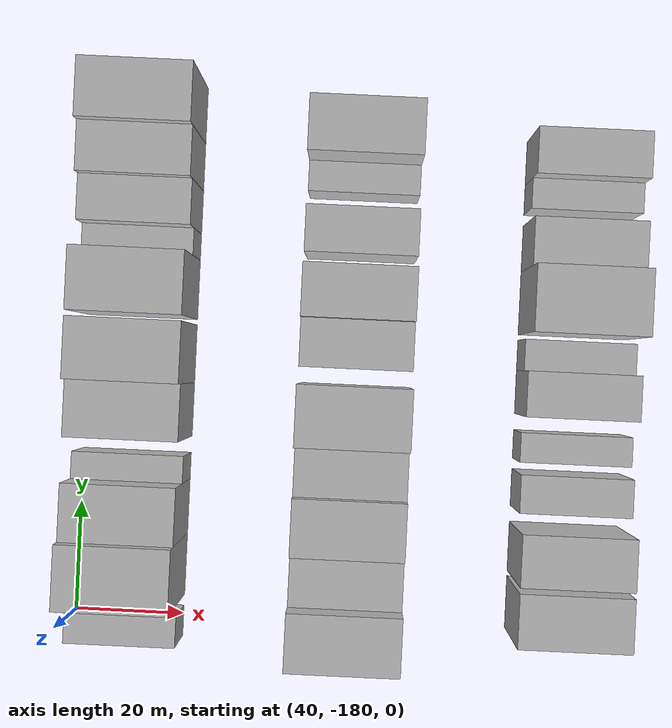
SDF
<sdf version="1.6">
 <world name="default">
  <model name="building_23">
   <static>1</static>
   <pose>50.0000 -181.3504 0 0.000000 0.000000 0.000000</pose>
   <link name="link">
    <pose>0 0 6.00 0 0 0</pose>
    <collision name="collision"><geometry><box><size>20.0000 5.7038 12.0000</size></box></geometry></collision>
    <visual name="visual">
     <cast_shadows>0</cast_shadows>
     <geometry><box><size>20.0000 5.7038 12.0000</size></box></geometry>
     <material>
      <script>
       <uri>model://HANNAS_wall/materials/scripts</uri>
       <uri>model://HANNAS_wall/materials/textures</uri>
       <name>vrc/HANNAS_wall</name>
      </script>
     </material>
    </visual>
   </link>
  </model>
  <model name="building_24">
   <static>1</static>
   <pose>50.0000 -170.7666 0 0.000000 0.000000 0.000000</pose>
   <link name="link">
    <pose>0 0 12.00 0 0 0</pose>
    <collision name="collision"><geometry><box><size>20.0000 11.4638 24.0000</size></box></geometry></collision>
    <visual name="visual">
     <cast_shadows>0</cast_shadows>
     <geometry><box><size>20.0000 11.4638 24.0000</size></box></geometry>
     <material>
      <script>
       <uri>model://HANNAS_wall/materials/scripts</uri>
       <uri>model://HANNAS_wall/materials/textures</uri>
       <name>vrc/HANNAS_wall</name>
      </script>
     </material>
    </visual>
   </link>
  </model>
  <model name="building_25">
   <static>1</static>
   <pose>50.0000 -159.9259 0 0.000000 0.000000 0.000000</pose>
   <link name="link">
    <pose>0 0 10.50 0 0 0</pose>
    <collision name="collision"><geometry><box><size>20.0000 10.2175 21.0000</size></box></geometry></collision>
    <visual name="visual">
     <cast_shadows>0</cast_shadows>
     <geometry><box><size>20.0000 10.2175 21.0000</size></box></geometry>
     <material>
      <script>
       <uri>model://HANNAS_wall/materials/scripts</uri>
       <uri>model://HANNAS_wall/materials/textures</uri>
       <name>vrc/HANNAS_wall</name>
      </script>
     </material>
    </visual>
   </link>
  </model>
  <model name="building_26">
   <static>1</static>
   <pose>50.0000 -152.3563 0 0.000000 0.000000 0.000000</pose>
   <link name="link">
    <pose>0 0 6.00 0 0 0</pose>
    <collision name="collision"><geometry><box><size>20.0000 4.9218 12.0000</size></box></geometry></collision>
    <visual name="visual">
     <cast_shadows>0</cast_shadows>
     <geometry><box><size>20.0000 4.9218 12.0000</size></box></geometry>
     <material>
      <script>
       <uri>model://HANNAS_wall/materials/scripts</uri>
       <uri>model://HANNAS_wall/materials/textures</uri>
       <name>vrc/HANNAS_wall</name>
      </script>
     </material>
    </visual>
   </link>
  </model>
  <model name="building_27">
   <static>1</static>
   <pose>50.0000 -141.8743 0 0.000000 0.000000 0.000000</pose>
   <link name="link">
    <pose>0 0 10.50 0 0 0</pose>
    <collision name="collision"><geometry><box><size>20.0000 10.0421 21.0000</size></box></geometry></collision>
    <visual name="visual">
     <cast_shadows>0</cast_shadows>
     <geometry><box><size>20.0000 10.0421 21.0000</size></box></geometry>
     <material>
      <script>
       <uri>model://HANNAS_wall/materials/scripts</uri>
       <uri>model://HANNAS_wall/materials/textures</uri>
       <name>vrc/HANNAS_wall</name>
      </script>
     </material>
    </visual>
   </link>
  </model>
  <model name="building_28">
   <static>1</static>
   <pose>50.0000 -131.4665 0 0.000000 0.000000 0.000000</pose>
   <link name="link">
    <pose>0 0 12.00 0 0 0</pose>
    <collision name="collision"><geometry><box><size>20.0000 10.7736 24.0000</size></box></geometry></collision>
    <visual name="visual">
     <cast_shadows>0</cast_shadows>
     <geometry><box><size>20.0000 10.7736 24.0000</size></box></geometry>
     <material>
      <script>
       <uri>model://HANNAS_wall/materials/scripts</uri>
       <uri>model://HANNAS_wall/materials/textures</uri>
       <name>vrc/HANNAS_wall</name>
      </script>
     </material>
    </visual>
   </link>
  </model>
  <model name="building_29">
   <static>1</static>
   <pose>50.0000 -119.5319 0 0.000000 0.000000 0.000000</pose>
   <link name="link">
    <pose>0 0 12.00 0 0 0</pose>
    <collision name="collision"><geometry><box><size>20.0000 11.0957 24.0000</size></box></geometry></collision>
    <visual name="visual">
     <cast_shadows>0</cast_shadows>
     <geometry><box><size>20.0000 11.0957 24.0000</size></box></geometry>
     <material>
      <script>
       <uri>model://HANNAS_wall/materials/scripts</uri>
       <uri>model://HANNAS_wall/materials/textures</uri>
       <name>vrc/HANNAS_wall</name>
      </script>
     </material>
    </visual>
   </link>
  </model>
  <model name="building_30">
   <static>1</static>
   <pose>50.0000 -111.5464 0 0.000000 0.000000 0.000000</pose>
   <link name="link">
    <pose>0 0 6.00 0 0 0</pose>
    <collision name="collision"><geometry><box><size>20.0000 4.8752 12.0000</size></box></geometry></collision>
    <visual name="visual">
     <cast_shadows>0</cast_shadows>
     <geometry><box><size>20.0000 4.8752 12.0000</size></box></geometry>
     <material>
      <script>
       <uri>model://HANNAS_wall/materials/scripts</uri>
       <uri>model://HANNAS_wall/materials/textures</uri>
       <name>vrc/HANNAS_wall</name>
      </script>
     </material>
    </visual>
   </link>
  </model>
  <model name="building_31">
   <static>1</static>
   <pose>50.0000 -105.0671 0 0.000000 0.000000 0.000000</pose>
   <link name="link">
    <pose>0 0 9.00 0 0 0</pose>
    <collision name="collision"><geometry><box><size>20.0000 8.0835 18.0000</size></box></geometry></collision>
    <visual name="visual">
     <cast_shadows>0</cast_shadows>
     <geometry><box><size>20.0000 8.0835 18.0000</size></box></geometry>
     <material>
      <script>
       <uri>model://HANNAS_wall/materials/scripts</uri>
       <uri>model://HANNAS_wall/materials/textures</uri>
       <name>vrc/HANNAS_wall</name>
      </script>
     </material>
    </visual>
   </link>
  </model>
  <model name="building_32">
   <static>1</static>
   <pose>50.0000 -96.6124 0 0.000000 0.000000 0.000000</pose>
   <link name="link">
    <pose>0 0 10.50 0 0 0</pose>
    <collision name="collision"><geometry><box><size>20.0000 8.8259 21.0000</size></box></geometry></collision>
    <visual name="visual">
     <cast_shadows>0</cast_shadows>
     <geometry><box><size>20.0000 8.8259 21.0000</size></box></geometry>
     <material>
      <script>
       <uri>model://HANNAS_wall/materials/scripts</uri>
       <uri>model://HANNAS_wall/materials/textures</uri>
       <name>vrc/HANNAS_wall</name>
      </script>
     </material>
    </visual>
   </link>
  </model>
  <model name="building_33">
   <static>1</static>
   <pose>50.0000 -87.0101 0 0.000000 0.000000 0.000000</pose>
   <link name="link">
    <pose>0 0 12.00 0 0 0</pose>
    <collision name="collision"><geometry><box><size>20.0000 10.3787 24.0000</size></box></geometry></collision>
    <visual name="visual">
     <cast_shadows>0</cast_shadows>
     <geometry><box><size>20.0000 10.3787 24.0000</size></box></geometry>
     <material>
      <script>
       <uri>model://HANNAS_wall/materials/scripts</uri>
       <uri>model://HANNAS_wall/materials/textures</uri>
       <name>vrc/HANNAS_wall</name>
      </script>
     </material>
    </visual>
   </link>
  </model>
  <model name="building_105">
   <static>1</static>
   <pose>90.0000 -179.9731 0 0.000000 0.000000 0.000000</pose>
   <link name="link">
    <pose>0 0 12.00 0 0 0</pose>
    <collision name="collision"><geometry><box><size>20.0000 10.2423 24.0000</size></box></geometry></collision>
    <visual name="visual">
     <cast_shadows>0</cast_shadows>
     <geometry><box><size>20.0000 10.2423 24.0000</size></box></geometry>
     <material>
      <script>
       <uri>model://HANNAS_wall/materials/scripts</uri>
       <uri>model://HANNAS_wall/materials/textures</uri>
       <name>vrc/HANNAS_wall</name>
      </script>
     </material>
    </visual>
   </link>
  </model>
  <model name="building_106">
   <static>1</static>
   <pose>90.0000 -170.3654 0 0.000000 0.000000 0.000000</pose>
   <link name="link">
    <pose>0 0 9.00 0 0 0</pose>
    <collision name="collision"><geometry><box><size>20.0000 8.9731 18.0000</size></box></geometry></collision>
    <visual name="visual">
     <cast_shadows>0</cast_shadows>
     <geometry><box><size>20.0000 8.9731 18.0000</size></box></geometry>
     <material>
      <script>
       <uri>model://HANNAS_wall/materials/scripts</uri>
       <uri>model://HANNAS_wall/materials/textures</uri>
       <name>vrc/HANNAS_wall</name>
      </script>
     </material>
    </visual>
   </link>
  </model>
  <model name="building_107">
   <static>1</static>
   <pose>90.0000 -160.7550 0 0.000000 0.000000 0.000000</pose>
   <link name="link">
    <pose>0 0 10.50 0 0 0</pose>
    <collision name="collision"><geometry><box><size>20.0000 10.2478 21.0000</size></box></geometry></collision>
    <visual name="visual">
     <cast_shadows>0</cast_shadows>
     <geometry><box><size>20.0000 10.2478 21.0000</size></box></geometry>
     <material>
      <script>
       <uri>model://HANNAS_wall/materials/scripts</uri>
       <uri>model://HANNAS_wall/materials/textures</uri>
       <name>vrc/HANNAS_wall</name>
      </script>
     </material>
    </visual>
   </link>
  </model>
  <model name="building_108">
   <static>1</static>
   <pose>90.0000 -151.1889 0 0.000000 0.000000 0.000000</pose>
   <link name="link">
    <pose>0 0 9.00 0 0 0</pose>
    <collision name="collision"><geometry><box><size>20.0000 8.8845 18.0000</size></box></geometry></collision>
    <visual name="visual">
     <cast_shadows>0</cast_shadows>
     <geometry><box><size>20.0000 8.8845 18.0000</size></box></geometry>
     <material>
      <script>
       <uri>model://HANNAS_wall/materials/scripts</uri>
       <uri>model://HANNAS_wall/materials/textures</uri>
       <name>vrc/HANNAS_wall</name>
      </script>
     </material>
    </visual>
   </link>
  </model>
  <model name="building_109">
   <static>1</static>
   <pose>90.0000 -141.3131 0 0.000000 0.000000 0.000000</pose>
   <link name="link">
    <pose>0 0 12.00 0 0 0</pose>
    <collision name="collision"><geometry><box><size>20.0000 10.8669 24.0000</size></box></geometry></collision>
    <visual name="visual">
     <cast_shadows>0</cast_shadows>
     <geometry><box><size>20.0000 10.8669 24.0000</size></box></geometry>
     <material>
      <script>
       <uri>model://HANNAS_wall/materials/scripts</uri>
       <uri>model://HANNAS_wall/materials/textures</uri>
       <name>vrc/HANNAS_wall</name>
      </script>
     </material>
    </visual>
   </link>
  </model>
  <model name="building_110">
   <static>1</static>
   <pose>90.0000 -128.5545 0 0.000000 0.000000 0.000000</pose>
   <link name="link">
    <pose>0 0 9.00 0 0 0</pose>
    <collision name="collision"><geometry><box><size>20.0000 8.6504 18.0000</size></box></geometry></collision>
    <visual name="visual">
     <cast_shadows>0</cast_shadows>
     <geometry><box><size>20.0000 8.6504 18.0000</size></box></geometry>
     <material>
      <script>
       <uri>model://HANNAS_wall/materials/scripts</uri>
       <uri>model://HANNAS_wall/materials/textures</uri>
       <name>vrc/HANNAS_wall</name>
      </script>
     </material>
    </visual>
   </link>
  </model>
  <model name="building_111">
   <static>1</static>
   <pose>90.0000 -119.4966 0 0.000000 0.000000 0.000000</pose>
   <link name="link">
    <pose>0 0 10.50 0 0 0</pose>
    <collision name="collision"><geometry><box><size>20.0000 9.4654 21.0000</size></box></geometry></collision>
    <visual name="visual">
     <cast_shadows>0</cast_shadows>
     <geometry><box><size>20.0000 9.4654 21.0000</size></box></geometry>
     <material>
      <script>
       <uri>model://HANNAS_wall/materials/scripts</uri>
       <uri>model://HANNAS_wall/materials/textures</uri>
       <name>vrc/HANNAS_wall</name>
      </script>
     </material>
    </visual>
   </link>
  </model>
  <model name="building_112">
   <static>1</static>
   <pose>90.0000 -108.6212 0 0.000000 0.000000 0.000000</pose>
   <link name="link">
    <pose>0 0 9.00 0 0 0</pose>
    <collision name="collision"><geometry><box><size>20.0000 8.2855 18.0000</size></box></geometry></collision>
    <visual name="visual">
     <cast_shadows>0</cast_shadows>
     <geometry><box><size>20.0000 8.2855 18.0000</size></box></geometry>
     <material>
      <script>
       <uri>model://HANNAS_wall/materials/scripts</uri>
       <uri>model://HANNAS_wall/materials/textures</uri>
       <name>vrc/HANNAS_wall</name>
      </script>
     </material>
    </visual>
   </link>
  </model>
  <model name="building_113">
   <static>1</static>
   <pose>90.0000 -98.7568 0 0.000000 0.000000 0.000000</pose>
   <link name="link">
    <pose>0 0 6.00 0 0 0</pose>
    <collision name="collision"><geometry><box><size>20.0000 5.4432 12.0000</size></box></geometry></collision>
    <visual name="visual">
     <cast_shadows>0</cast_shadows>
     <geometry><box><size>20.0000 5.4432 12.0000</size></box></geometry>
     <material>
      <script>
       <uri>model://HANNAS_wall/materials/scripts</uri>
       <uri>model://HANNAS_wall/materials/textures</uri>
       <name>vrc/HANNAS_wall</name>
      </script>
     </material>
    </visual>
   </link>
  </model>
  <model name="building_114">
   <static>1</static>
   <pose>90.0000 -91.2025 0 0.000000 0.000000 0.000000</pose>
   <link name="link">
    <pose>0 0 12.00 0 0 0</pose>
    <collision name="collision"><geometry><box><size>20.0000 9.6654 24.0000</size></box></geometry></collision>
    <visual name="visual">
     <cast_shadows>0</cast_shadows>
     <geometry><box><size>20.0000 9.6654 24.0000</size></box></geometry>
     <material>
      <script>
       <uri>model://HANNAS_wall/materials/scripts</uri>
       <uri>model://HANNAS_wall/materials/textures</uri>
       <name>vrc/HANNAS_wall</name>
      </script>
     </material>
    </visual>
   </link>
  </model>
  <model name="building_189">
   <static>1</static>
   <pose>130.0000 -174.9758 0 0.000000 0.000000 0.000000</pose>
   <link name="link">
    <pose>0 0 10.50 0 0 0</pose>
    <collision name="collision"><geometry><box><size>20.0000 9.5912 21.0000</size></box></geometry></collision>
    <visual name="visual">
     <cast_shadows>0</cast_shadows>
     <geometry><box><size>20.0000 9.5912 21.0000</size></box></geometry>
     <material>
      <script>
       <uri>model://HANNAS_wall/materials/scripts</uri>
       <uri>model://HANNAS_wall/materials/textures</uri>
       <name>vrc/HANNAS_wall</name>
      </script>
     </material>
    </visual>
   </link>
  </model>
  <model name="building_190">
   <static>1</static>
   <pose>130.0000 -164.5649 0 0.000000 0.000000 0.000000</pose>
   <link name="link">
    <pose>0 0 10.50 0 0 0</pose>
    <collision name="collision"><geometry><box><size>20.0000 9.2305 21.0000</size></box></geometry></collision>
    <visual name="visual">
     <cast_shadows>0</cast_shadows>
     <geometry><box><size>20.0000 9.2305 21.0000</size></box></geometry>
     <material>
      <script>
       <uri>model://HANNAS_wall/materials/scripts</uri>
       <uri>model://HANNAS_wall/materials/textures</uri>
       <name>vrc/HANNAS_wall</name>
      </script>
     </material>
    </visual>
   </link>
  </model>
  <model name="building_191">
   <static>1</static>
   <pose>130.0000 -153.5371 0 0.000000 0.000000 0.000000</pose>
   <link name="link">
    <pose>0 0 7.50 0 0 0</pose>
    <collision name="collision"><geometry><box><size>20.0000 6.8252 15.0000</size></box></geometry></collision>
    <visual name="visual">
     <cast_shadows>0</cast_shadows>
     <geometry><box><size>20.0000 6.8252 15.0000</size></box></geometry>
     <material>
      <script>
       <uri>model://HANNAS_wall/materials/scripts</uri>
       <uri>model://HANNAS_wall/materials/textures</uri>
       <name>vrc/HANNAS_wall</name>
      </script>
     </material>
    </visual>
   </link>
  </model>
  <model name="building_192">
   <static>1</static>
   <pose>130.0000 -145.4699 0 0.000000 0.000000 0.000000</pose>
   <link name="link">
    <pose>0 0 6.00 0 0 0</pose>
    <collision name="collision"><geometry><box><size>20.0000 5.3091 12.0000</size></box></geometry></collision>
    <visual name="visual">
     <cast_shadows>0</cast_shadows>
     <geometry><box><size>20.0000 5.3091 12.0000</size></box></geometry>
     <material>
      <script>
       <uri>model://HANNAS_wall/materials/scripts</uri>
       <uri>model://HANNAS_wall/materials/textures</uri>
       <name>vrc/HANNAS_wall</name>
      </script>
     </material>
    </visual>
   </link>
  </model>
  <model name="building_193">
   <static>1</static>
   <pose>130.0000 -135.7841 0 0.000000 0.000000 0.000000</pose>
   <link name="link">
    <pose>0 0 9.00 0 0 0</pose>
    <collision name="collision"><geometry><box><size>20.0000 8.0626 18.0000</size></box></geometry></collision>
    <visual name="visual">
     <cast_shadows>0</cast_shadows>
     <geometry><box><size>20.0000 8.0626 18.0000</size></box></geometry>
     <material>
      <script>
       <uri>model://HANNAS_wall/materials/scripts</uri>
       <uri>model://HANNAS_wall/materials/textures</uri>
       <name>vrc/HANNAS_wall</name>
      </script>
     </material>
    </visual>
   </link>
  </model>
  <model name="building_194">
   <static>1</static>
   <pose>130.0000 -128.9300 0 0.000000 0.000000 0.000000</pose>
   <link name="link">
    <pose>0 0 6.00 0 0 0</pose>
    <collision name="collision"><geometry><box><size>20.0000 5.6456 12.0000</size></box></geometry></collision>
    <visual name="visual">
     <cast_shadows>0</cast_shadows>
     <geometry><box><size>20.0000 5.6456 12.0000</size></box></geometry>
     <material>
      <script>
       <uri>model://HANNAS_wall/materials/scripts</uri>
       <uri>model://HANNAS_wall/materials/textures</uri>
       <name>vrc/HANNAS_wall</name>
      </script>
     </material>
    </visual>
   </link>
  </model>
  <model name="building_195">
   <static>1</static>
   <pose>130.0000 -119.2427 0 0.000000 0.000000 0.000000</pose>
   <link name="link">
    <pose>0 0 12.00 0 0 0</pose>
    <collision name="collision"><geometry><box><size>20.0000 11.7288 24.0000</size></box></geometry></collision>
    <visual name="visual">
     <cast_shadows>0</cast_shadows>
     <geometry><box><size>20.0000 11.7288 24.0000</size></box></geometry>
     <material>
      <script>
       <uri>model://HANNAS_wall/materials/scripts</uri>
       <uri>model://HANNAS_wall/materials/textures</uri>
       <name>vrc/HANNAS_wall</name>
      </script>
     </material>
    </visual>
   </link>
  </model>
  <model name="building_196">
   <static>1</static>
   <pose>130.0000 -109.0704 0 0.000000 0.000000 0.000000</pose>
   <link name="link">
    <pose>0 0 9.00 0 0 0</pose>
    <collision name="collision"><geometry><box><size>20.0000 8.6158 18.0000</size></box></geometry></collision>
    <visual name="visual">
     <cast_shadows>0</cast_shadows>
     <geometry><box><size>20.0000 8.6158 18.0000</size></box></geometry>
     <material>
      <script>
       <uri>model://HANNAS_wall/materials/scripts</uri>
       <uri>model://HANNAS_wall/materials/textures</uri>
       <name>vrc/HANNAS_wall</name>
      </script>
     </material>
    </visual>
   </link>
  </model>
  <model name="building_197">
   <static>1</static>
   <pose>130.0000 -100.0348 0 0.000000 0.000000 0.000000</pose>
   <link name="link">
    <pose>0 0 6.00 0 0 0</pose>
    <collision name="collision"><geometry><box><size>20.0000 5.4556 12.0000</size></box></geometry></collision>
    <visual name="visual">
     <cast_shadows>0</cast_shadows>
     <geometry><box><size>20.0000 5.4556 12.0000</size></box></geometry>
     <material>
      <script>
       <uri>model://HANNAS_wall/materials/scripts</uri>
       <uri>model://HANNAS_wall/materials/textures</uri>
       <name>vrc/HANNAS_wall</name>
      </script>
     </material>
    </visual>
   </link>
  </model>
  <model name="building_198">
   <static>1</static>
   <pose>130.0000 -93.1987 0 0.000000 0.000000 0.000000</pose>
   <link name="link">
    <pose>0 0 9.00 0 0 0</pose>
    <collision name="collision"><geometry><box><size>20.0000 8.2165 18.0000</size></box></geometry></collision>
    <visual name="visual">
     <cast_shadows>0</cast_shadows>
     <geometry><box><size>20.0000 8.2165 18.0000</size></box></geometry>
     <material>
      <script>
       <uri>model://HANNAS_wall/materials/scripts</uri>
       <uri>model://HANNAS_wall/materials/textures</uri>
       <name>vrc/HANNAS_wall</name>
      </script>
     </material>
    </visual>
   </link>
  </model>
 </world>
</sdf>
